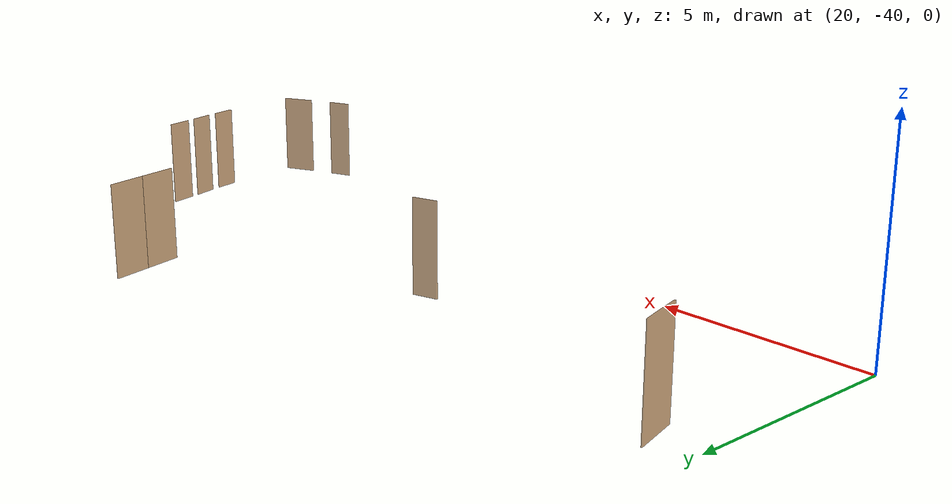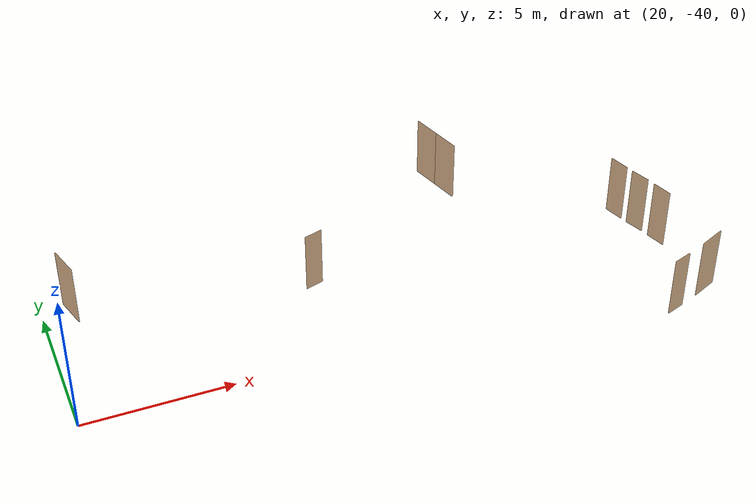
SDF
<sdf version="1.7">
 <world name="world">
  <include><uri>model://sun</uri></include>
  <model name="D2">
   <pose>40.74187742083717 -41.25282906710838 0.0 0 0 -2.713354953131238</pose>
   <link name="right">
    <pose>0 0 1.11 0 0 0</pose>
    <visual name="right_visual">
     <geometry><box><size>0.9260351120050222 0.03 2.2</size></box></geometry>
     <material><ambient>0.5 0.25 0 0.6</ambient><diffuse>0.5 0.25 0 0.6</diffuse></material>
    </visual>
    <collision name="right_collision">
     <geometry><box><size>0.9260351120050222 0.03 2.2</size></box></geometry>
     <surface><contact><collide_bitmask>0x02</collide_bitmask></contact></surface>
    </collision>
    <inertial>
     <mass>50.0</mass>
     <inertia><ixx>20.17041666666667</ixx><iyy>23.73975428610898</iyy><izz>3.576837619442309</izz></inertia>
    </inertial>
   </link>
   <joint name="right_joint" type="revolute">
    <parent>world</parent>
    <child>right</child>
    <axis><xyz>0 0 1</xyz><limit><lower>0</lower><upper>1.57</upper></limit></axis>
    <pose>0.4680175560025111 0 0 0 0 0</pose>
   </joint>
   <plugin name="door_D2" filename="libdoor.so">
    <v_max_door>0.5</v_max_door>
    <a_max_door>0.3</a_max_door>
    <a_nom_door>0.15</a_nom_door>
    <dx_min_door>0.01</dx_min_door>
    <f_max_door>500.0</f_max_door>
    <door name="D2" type="SwingDoor" left_joint_name="empty_joint" right_joint_name="right_joint"/>
   </plugin>
  </model>
  <model name="D20">
   <pose>40.43922194580149 -38.43462739950938 0.0 0 0 -1.225222611764381</pose>
   <link name="right">
    <pose>0 0 1.11 0 0 0</pose>
    <visual name="right_visual">
     <geometry><box><size>0.6986711318985143 0.03 2.2</size></box></geometry>
     <material><ambient>0.5 0.25 0 0.6</ambient><diffuse>0.5 0.25 0 0.6</diffuse></material>
    </visual>
    <collision name="right_collision">
     <geometry><box><size>0.6986711318985143 0.03 2.2</size></box></geometry>
     <surface><contact><collide_bitmask>0x02</collide_bitmask></contact></surface>
    </collision>
    <inertial>
     <mass>50.0</mass>
     <inertia><ixx>20.17041666666667</ixx><iyy>22.200588960618134</iyy><izz>2.0376722939514633</izz></inertia>
    </inertial>
   </link>
   <joint name="right_joint" type="revolute">
    <parent>world</parent>
    <child>right</child>
    <axis><xyz>0 0 1</xyz><limit><lower>0</lower><upper>1.57</upper></limit></axis>
    <pose>0.35433556594925714 0 0 0 0 0</pose>
   </joint>
   <plugin name="door_D20" filename="libdoor.so">
    <v_max_door>0.5</v_max_door>
    <a_max_door>0.3</a_max_door>
    <a_nom_door>0.15</a_nom_door>
    <dx_min_door>0.01</dx_min_door>
    <f_max_door>500.0</f_max_door>
    <door name="D20" type="SwingDoor" left_joint_name="empty_joint" right_joint_name="right_joint"/>
   </plugin>
  </model>
  <model name="D21">
   <pose>40.099687804383144 -37.52444142503674 0.0 0 0 -1.173716881569916</pose>
   <link name="right">
    <pose>0 0 1.11 0 0 0</pose>
    <visual name="right_visual">
     <geometry><box><size>0.6825449934010345 0.03 2.2</size></box></geometry>
     <material><ambient>0.5 0.25 0 0.6</ambient><diffuse>0.5 0.25 0 0.6</diffuse></material>
    </visual>
    <collision name="right_collision">
     <geometry><box><size>0.6825449934010345 0.03 2.2</size></box></geometry>
     <surface><contact><collide_bitmask>0x02</collide_bitmask></contact></surface>
    </collision>
    <inertial>
     <mass>50.0</mass>
     <inertia><ixx>20.17041666666667</ixx><iyy>22.10778195007008</iyy><izz>1.9448652834034093</izz></inertia>
    </inertial>
   </link>
   <joint name="right_joint" type="revolute">
    <parent>world</parent>
    <child>right</child>
    <axis><xyz>0 0 1</xyz><limit><lower>0</lower><upper>1.57</upper></limit></axis>
    <pose>0.34627249670051724 0 0 0 0 0</pose>
   </joint>
   <plugin name="door_D21" filename="libdoor.so">
    <v_max_door>0.5</v_max_door>
    <a_max_door>0.3</a_max_door>
    <a_nom_door>0.15</a_nom_door>
    <dx_min_door>0.01</dx_min_door>
    <f_max_door>500.0</f_max_door>
    <door name="D21" type="SwingDoor" left_joint_name="empty_joint" right_joint_name="right_joint"/>
   </plugin>
  </model>
  <model name="D22">
   <pose>39.76795054150557 -36.65284146261264 0.0 0 0 -1.2232855965163554</pose>
   <link name="right">
    <pose>0 0 1.11 0 0 0</pose>
    <visual name="right_visual">
     <geometry><box><size>0.6998933678384069 0.03 2.2</size></box></geometry>
     <material><ambient>0.5 0.25 0 0.6</ambient><diffuse>0.5 0.25 0 0.6</diffuse></material>
    </visual>
    <collision name="right_collision">
     <geometry><box><size>0.6998933678384069 0.03 2.2</size></box></geometry>
     <surface><contact><collide_bitmask>0x02</collide_bitmask></contact></surface>
    </collision>
    <inertial>
     <mass>50.0</mass>
     <inertia><ixx>20.17041666666667</ixx><iyy>22.207711359767455</iyy><izz>2.0447946931007817</izz></inertia>
    </inertial>
   </link>
   <joint name="right_joint" type="revolute">
    <parent>world</parent>
    <child>right</child>
    <axis><xyz>0 0 1</xyz><limit><lower>0</lower><upper>1.57</upper></limit></axis>
    <pose>0.3549466839192035 0 0 0 0 0</pose>
   </joint>
   <plugin name="door_D22" filename="libdoor.so">
    <v_max_door>0.5</v_max_door>
    <a_max_door>0.3</a_max_door>
    <a_nom_door>0.15</a_nom_door>
    <dx_min_door>0.01</dx_min_door>
    <f_max_door>500.0</f_max_door>
    <door name="D22" type="SwingDoor" left_joint_name="empty_joint" right_joint_name="right_joint"/>
   </plugin>
  </model>
  <model name="D41">
   <pose>20.938375042468824 -34.959666765774315 0.0 0 0 -1.2924821811247602</pose>
   <link name="right">
    <pose>0 0 1.11 0 0 0</pose>
    <visual name="right_visual">
     <geometry><box><size>1.0692544414281375 0.03 2.2</size></box></geometry>
     <material><ambient>0.5 0.25 0 0.6</ambient><diffuse>0.5 0.25 0 0.6</diffuse></material>
    </visual>
    <collision name="right_collision">
     <geometry><box><size>1.0692544414281375 0.03 2.2</size></box></geometry>
     <surface><contact><collide_bitmask>0x02</collide_bitmask></contact></surface>
    </collision>
    <inertial>
     <mass>50.0</mass>
     <inertia><ixx>20.17041666666667</ixx><iyy>24.93043775214083</iyy><izz>4.76752108547416</izz></inertia>
    </inertial>
   </link>
   <joint name="right_joint" type="revolute">
    <parent>world</parent>
    <child>right</child>
    <axis><xyz>0 0 -1</xyz><limit><lower>0</lower><upper>1.57</upper></limit></axis>
    <pose>0.5396272207140688 0 0 0 0 0</pose>
   </joint>
   <plugin name="door_D41" filename="libdoor.so">
    <v_max_door>0.5</v_max_door>
    <a_max_door>0.3</a_max_door>
    <a_nom_door>0.15</a_nom_door>
    <dx_min_door>0.01</dx_min_door>
    <f_max_door>500.0</f_max_door>
    <door name="D41" type="SwingDoor" left_joint_name="empty_joint" right_joint_name="right_joint"/>
   </plugin>
  </model>
  <model name="D42">
   <pose>28.783457642551998 -36.49286317372109 0.0 0 0 -2.852048980464756</pose>
   <link name="right">
    <pose>0 0 1.11 0 0 0</pose>
    <visual name="right_visual">
     <geometry><box><size>0.6282527827614578 0.03 2.2</size></box></geometry>
     <material><ambient>0.5 0.25 0 0.6</ambient><diffuse>0.5 0.25 0 0.6</diffuse></material>
    </visual>
    <collision name="right_collision">
     <geometry><box><size>0.6282527827614578 0.03 2.2</size></box></geometry>
     <surface><contact><collide_bitmask>0x02</collide_bitmask></contact></surface>
    </collision>
    <inertial>
     <mass>50.0</mass>
     <inertia><ixx>20.17041666666667</ixx><iyy>21.81125649603132</iyy><izz>1.648339829364648</izz></inertia>
    </inertial>
   </link>
   <joint name="right_joint" type="revolute">
    <parent>world</parent>
    <child>right</child>
    <axis><xyz>0 0 1</xyz><limit><lower>0</lower><upper>1.57</upper></limit></axis>
    <pose>0.3191263913807289 0 0 0 0 0</pose>
   </joint>
   <plugin name="door_D42" filename="libdoor.so">
    <v_max_door>0.5</v_max_door>
    <a_max_door>0.3</a_max_door>
    <a_nom_door>0.15</a_nom_door>
    <dx_min_door>0.01</dx_min_door>
    <f_max_door>500.0</f_max_door>
    <door name="D42" type="SwingDoor" left_joint_name="empty_joint" right_joint_name="right_joint"/>
   </plugin>
  </model>
  <model name="D65">
   <pose>39.37315531203538 -41.802309813905936 0.0 0 0 -2.799507952224993</pose>
   <link name="right">
    <pose>0 0 1.11 0 0 0</pose>
    <visual name="right_visual">
     <geometry><box><size>0.6503025887248357 0.03 2.2</size></box></geometry>
     <material><ambient>0.5 0.25 0 0.6</ambient><diffuse>0.5 0.25 0 0.6</diffuse></material>
    </visual>
    <collision name="right_collision">
     <geometry><box><size>0.6503025887248357 0.03 2.2</size></box></geometry>
     <surface><contact><collide_bitmask>0x02</collide_bitmask></contact></surface>
    </collision>
    <inertial>
     <mass>50.0</mass>
     <inertia><ixx>20.17041666666667</ixx><iyy>21.9287227370926</iyy><izz>1.7658060704259284</izz></inertia>
    </inertial>
   </link>
   <joint name="right_joint" type="revolute">
    <parent>world</parent>
    <child>right</child>
    <axis><xyz>0 0 1</xyz><limit><lower>0</lower><upper>1.57</upper></limit></axis>
    <pose>0.33015129436241786 0 0 0 0 0</pose>
   </joint>
   <plugin name="door_D65" filename="libdoor.so">
    <v_max_door>0.5</v_max_door>
    <a_max_door>0.3</a_max_door>
    <a_nom_door>0.15</a_nom_door>
    <dx_min_door>0.01</dx_min_door>
    <f_max_door>500.0</f_max_door>
    <door name="D65" type="SwingDoor" left_joint_name="empty_joint" right_joint_name="right_joint"/>
   </plugin>
  </model>
  <model name="DH2">
   <pose>34.58057911643007 -32.862078792214746 0.0 0 0 1.8923597204226241</pose>
   <link name="right">
    <pose>0.48078995757787274 0 1.11 0 0 0</pose>
    <visual name="right_visual">
     <geometry><box><size>0.9515799151557455 0.03 2.2</size></box></geometry>
     <material><ambient>0.5 0.25 0 0.6</ambient><diffuse>0.5 0.25 0 0.6</diffuse></material>
    </visual>
    <collision name="right_collision">
     <geometry><box><size>0.9515799151557455 0.03 2.2</size></box></geometry>
     <surface><contact><collide_bitmask>0x02</collide_bitmask></contact></surface>
    </collision>
    <inertial>
     <mass>50.0</mass>
     <inertia><ixx>20.17041666666667</ixx><iyy>23.93960139553257</iyy><izz>3.7766847288658996</izz></inertia>
    </inertial>
   </link>
   <joint name="right_joint" type="revolute">
    <parent>world</parent>
    <child>right</child>
    <axis><xyz>0 0 -1</xyz><limit><lower>0</lower><upper>1.57</upper></limit></axis>
    <pose>0.48078995757787274 0 0 0 0 0</pose>
   </joint>
   <link name="left">
    <pose>-0.48078995757787274 0 1.11 0 0 0</pose>
    <visual name="left_visual">
     <geometry><box><size>0.9515799151557455 0.03 2.2</size></box></geometry>
     <material><ambient>0.5 0.25 0 0.6</ambient><diffuse>0.5 0.25 0 0.6</diffuse></material>
    </visual>
    <collision name="left_collision">
     <geometry><box><size>0.9515799151557455 0.03 2.2</size></box></geometry>
     <surface><contact><collide_bitmask>0x02</collide_bitmask></contact></surface>
    </collision>
    <inertial>
     <mass>50.0</mass>
     <inertia><ixx>20.17041666666667</ixx><iyy>23.93960139553257</iyy><izz>3.7766847288658996</izz></inertia>
    </inertial>
   </link>
   <joint name="left_joint" type="revolute">
    <parent>world</parent>
    <child>left</child>
    <axis><xyz>0 0 -1</xyz><limit><lower>-1.57</lower><upper>0</upper></limit></axis>
    <pose>-0.48078995757787274 0 0 0 0 0</pose>
   </joint>
   <plugin name="door_DH2" filename="libdoor.so">
    <v_max_door>0.5</v_max_door>
    <a_max_door>0.3</a_max_door>
    <a_nom_door>0.15</a_nom_door>
    <dx_min_door>0.01</dx_min_door>
    <f_max_door>500.0</f_max_door>
    <door name="DH2" type="DoubleSwingDoor" left_joint_name="left_joint" right_joint_name="right_joint"/>
   </plugin>
  </model>
 </world>
</sdf>
